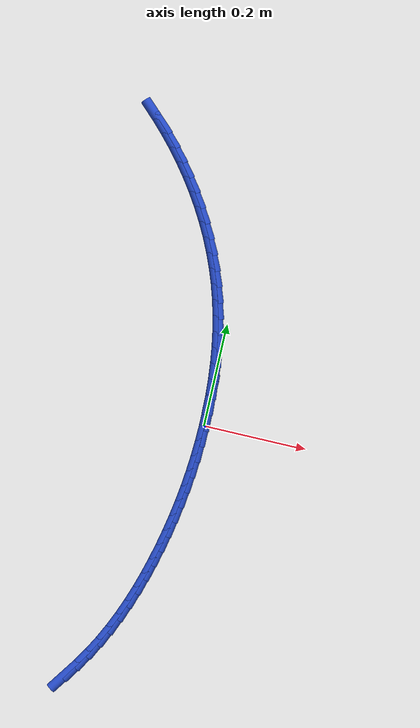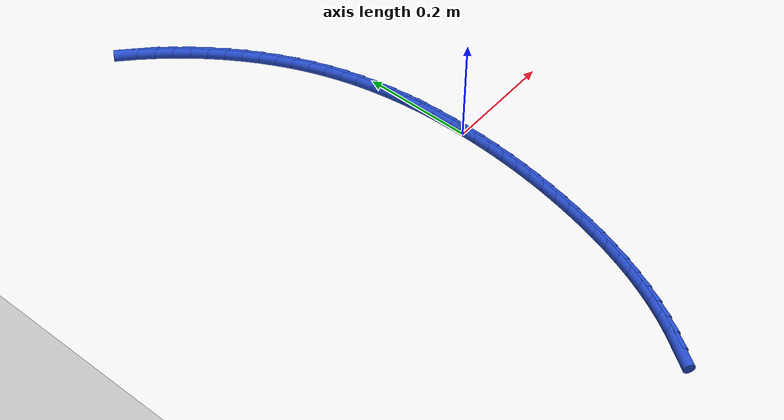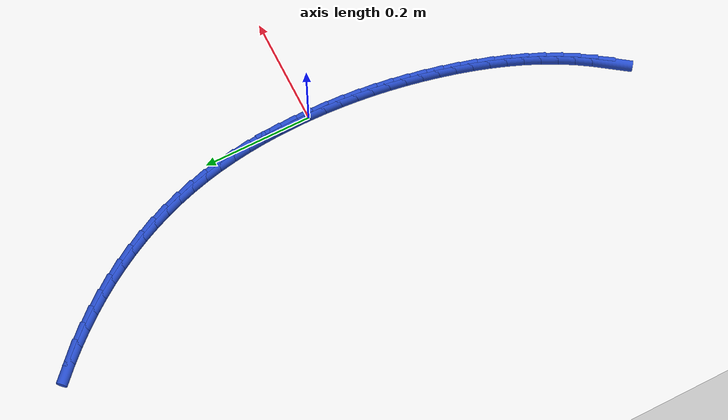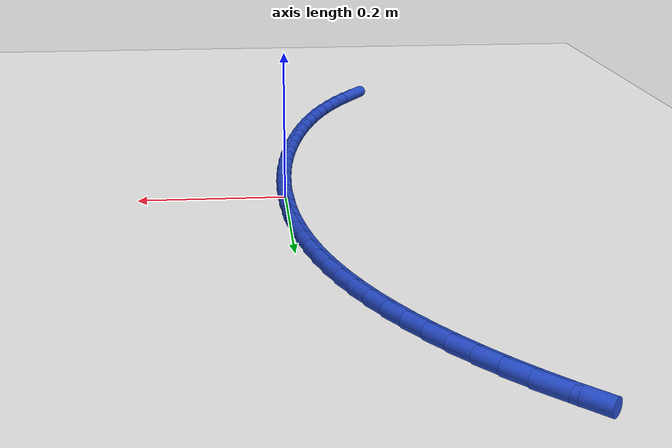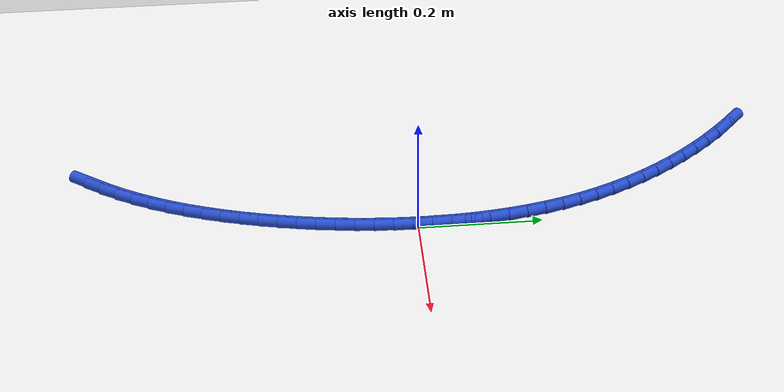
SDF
<sdf version="1.6">
 <world name="default">
  <model name="ground_plane">
   <static>1</static>
   <link name="link">
    <collision name="collision">
     <geometry><plane><normal>0 0 1</normal><size>100 100</size></plane></geometry>
     <surface><friction><ode><mu>100</mu><mu2>50</mu2></ode></friction></surface>
    </collision>
    <visual name="visual">
     <cast_shadows>0</cast_shadows>
     <geometry><plane><normal>0 0 1</normal><size>100 100</size></plane></geometry>
     <material>
      <script><uri>file://media/materials/scripts/gazebo.material</uri><name>Gazebo/WhiteGlow</name></script>
     </material>
    </visual>
   </link>
  </model>
  <model name="line">
   <link name="link_0">
    <pose>3.903127820947816e-18 0.0 0.01 0 1.57 -1.5688685416763228</pose>
    <collision name="collision">
     <geometry><cylinder><radius>0.01</radius><length>0.08</length></cylinder></geometry>
    </collision>
    <visual name="visual">
     <material>
      <script><name>Gazebo/Blue</name><uri>file://media/materials/scripts/gazebo.material</uri></script>
     </material>
     <geometry><cylinder><radius>0.01</radius><length>0.08</length></cylinder></geometry>
    </visual>
   </link>
   <link name="link_1">
    <pose>-5.944774072849972e-05 0.030837289131833163 0.01 0 1.57 -1.538648523186415</pose>
    <collision name="collision">
     <geometry><cylinder><radius>0.01</radius><length>0.08</length></cylinder></geometry>
    </collision>
    <visual name="visual">
     <material>
      <script><name>Gazebo/Blue</name><uri>file://media/materials/scripts/gazebo.material</uri></script>
     </material>
     <geometry><cylinder><radius>0.01</radius><length>0.08</length></cylinder></geometry>
    </visual>
   </link>
   <link name="link_2">
    <pose>-0.0010516052413795341 0.061689029335046615 0.01 0 1.57 -1.5064721320048367</pose>
    <collision name="collision">
     <geometry><cylinder><radius>0.01</radius><length>0.08</length></cylinder></geometry>
    </collision>
    <visual name="visual">
     <material>
      <script><name>Gazebo/Blue</name><uri>file://media/materials/scripts/gazebo.material</uri></script>
     </material>
     <geometry><cylinder><radius>0.01</radius><length>0.08</length></cylinder></geometry>
    </visual>
   </link>
   <link name="link_3">
    <pose>-0.0030357017874402554 0.09249173631178999 0.01 0 1.57 -1.472216735551028</pose>
    <collision name="collision">
     <geometry><cylinder><radius>0.01</radius><length>0.08</length></cylinder></geometry>
    </collision>
    <visual name="visual">
     <material>
      <script><name>Gazebo/Blue</name><uri>file://media/materials/scripts/gazebo.material</uri></script>
     </material>
     <geometry><cylinder><radius>0.01</radius><length>0.08</length></cylinder></geometry>
    </visual>
   </link>
   <link name="link_4">
    <pose>-0.006070966664397824 0.12318192576421297 0.01 0 1.57 -1.4357629286368352</pose>
    <collision name="collision">
     <geometry><cylinder><radius>0.01</radius><length>0.08</length></cylinder></geometry>
    </collision>
    <visual name="visual">
     <material>
      <script><name>Gazebo/Blue</name><uri>file://media/materials/scripts/gazebo.material</uri></script>
     </material>
     <geometry><cylinder><radius>0.01</radius><length>0.08</length></cylinder></geometry>
    </visual>
   </link>
   <link name="link_5">
    <pose>-0.010216629157739396 0.15369611339446512 0.01 0 1.57 -1.3969989315505809</pose>
    <collision name="collision">
     <geometry><cylinder><radius>0.01</radius><length>0.08</length></cylinder></geometry>
    </collision>
    <visual name="visual">
     <material>
      <script><name>Gazebo/Blue</name><uri>file://media/materials/scripts/gazebo.material</uri></script>
     </material>
     <geometry><cylinder><radius>0.01</radius><length>0.08</length></cylinder></geometry>
    </visual>
   </link>
   <link name="link_6">
    <pose>-0.015531918552952124 0.1839708149046961 0.01 0 1.57 -1.3558261853358378</pose>
    <collision name="collision">
     <geometry><cylinder><radius>0.01</radius><length>0.08</length></cylinder></geometry>
    </collision>
    <visual name="visual">
     <material>
      <script><name>Gazebo/Blue</name><uri>file://media/materials/scripts/gazebo.material</uri></script>
     </material>
     <geometry><cylinder><radius>0.01</radius><length>0.08</length></cylinder></geometry>
    </visual>
   </link>
   <link name="link_7">
    <pose>-0.022076064135523172 0.2139425459970556 0.01 0 1.57 -1.3121662163758536</pose>
    <collision name="collision">
     <geometry><cylinder><radius>0.01</radius><length>0.08</length></cylinder></geometry>
    </collision>
    <visual name="visual">
     <material>
      <script><name>Gazebo/Blue</name><uri>file://media/materials/scripts/gazebo.material</uri></script>
     </material>
     <geometry><cylinder><radius>0.01</radius><length>0.08</length></cylinder></geometry>
    </visual>
   </link>
   <link name="link_8">
    <pose>-0.02990829519093969 0.24354782237369313 0.01 0 1.57 -1.2662745034594183</pose>
    <collision name="collision">
     <geometry><cylinder><radius>0.01</radius><length>0.08</length></cylinder></geometry>
    </collision>
    <visual name="visual">
     <material>
      <script><name>Gazebo/Blue</name><uri>file://media/materials/scripts/gazebo.material</uri></script>
     </material>
     <geometry><cylinder><radius>0.01</radius><length>0.08</length></cylinder></geometry>
    </visual>
   </link>
   <link name="link_9">
    <pose>-0.039079155079875694 0.27272671507767576 0.01 0 1.57 -1.220235402214348</pose>
    <collision name="collision">
     <geometry><cylinder><radius>0.01</radius><length>0.08</length></cylinder></geometry>
    </collision>
    <visual name="visual">
     <material>
      <script><name>Gazebo/Blue</name><uri>file://media/materials/scripts/gazebo.material</uri></script>
     </material>
     <geometry><cylinder><radius>0.01</radius><length>0.08</length></cylinder></geometry>
    </visual>
   </link>
   <link name="link_10">
    <pose>-0.0495798832912456 0.30144356953693513 0.01 0 1.57 -1.1749538954135756</pose>
    <collision name="collision">
     <geometry><cylinder><radius>0.01</radius><length>0.08</length></cylinder></geometry>
    </collision>
    <visual name="visual">
     <material>
      <script><name>Gazebo/Blue</name><uri>file://media/materials/scripts/gazebo.material</uri></script>
     </material>
     <geometry><cylinder><radius>0.01</radius><length>0.08</length></cylinder></geometry>
    </visual>
   </link>
   <link name="link_11">
    <pose>-0.06137693907104492 0.3296728742802801 0.01 0 1.57 -1.130457455954913</pose>
    <collision name="collision">
     <geometry><cylinder><radius>0.01</radius><length>0.08</length></cylinder></geometry>
    </collision>
    <visual name="visual">
     <material>
      <script><name>Gazebo/Blue</name><uri>file://media/materials/scripts/gazebo.material</uri></script>
     </material>
     <geometry><cylinder><radius>0.01</radius><length>0.08</length></cylinder></geometry>
    </visual>
   </link>
   <link name="link_12">
    <pose>-0.07443669855390374 0.35738915185583764 0.01 0 1.57 -1.0867579508593552</pose>
    <collision name="collision">
     <geometry><cylinder><radius>0.01</radius><length>0.08</length></cylinder></geometry>
    </collision>
    <visual name="visual">
     <material>
      <script><name>Gazebo/Blue</name><uri>file://media/materials/scripts/gazebo.material</uri></script>
     </material>
     <geometry><cylinder><radius>0.01</radius><length>0.08</length></cylinder></geometry>
    </visual>
   </link>
   <link name="link_13">
    <pose>-0.08872553787445203 0.38456692481173443 0.01 0 1.57 -1.04385568588925</pose>
    <collision name="collision">
     <geometry><cylinder><radius>0.01</radius><length>0.08</length></cylinder></geometry>
    </collision>
    <visual name="visual">
     <material>
      <script><name>Gazebo/Blue</name><uri>file://media/materials/scripts/gazebo.material</uri></script>
     </material>
     <geometry><cylinder><radius>0.01</radius><length>0.08</length></cylinder></geometry>
    </visual>
   </link>
   <link name="link_14">
    <pose>-0.10420983316731983 0.4111807156960974 0.01 0 1.57 -1.0017406390713344</pose>
    <collision name="collision">
     <geometry><cylinder><radius>0.01</radius><length>0.08</length></cylinder></geometry>
    </collision>
    <visual name="visual">
     <material>
      <script><name>Gazebo/Blue</name><uri>file://media/materials/scripts/gazebo.material</uri></script>
     </material>
     <geometry><cylinder><radius>0.01</radius><length>0.08</length></cylinder></geometry>
    </visual>
   </link>
   <link name="link_15">
    <pose>-0.12085596056713714 0.43720504705705326 0.01 0 1.57 -0.9603937432757044</pose>
    <collision name="collision">
     <geometry><cylinder><radius>0.01</radius><length>0.08</length></cylinder></geometry>
    </collision>
    <visual name="visual">
     <material>
      <script><name>Gazebo/Blue</name><uri>file://media/materials/scripts/gazebo.material</uri></script>
     </material>
     <geometry><cylinder><radius>0.01</radius><length>0.08</length></cylinder></geometry>
    </visual>
   </link>
   <link name="link_16">
    <pose>-0.13863029620853415 0.4626144414427294 0.01 0 1.57 -0.9197881642914152</pose>
    <collision name="collision">
     <geometry><cylinder><radius>0.01</radius><length>0.08</length></cylinder></geometry>
    </collision>
    <visual name="visual">
     <material>
      <script><name>Gazebo/Blue</name><uri>file://media/materials/scripts/gazebo.material</uri></script>
     </material>
     <geometry><cylinder><radius>0.01</radius><length>0.08</length></cylinder></geometry>
    </visual>
   </link>
   <link name="link_17">
    <pose>-0.15749921622614063 0.4873834214012518 0.01 0 1.57 -0.8798905333932457</pose>
    <collision name="collision">
     <geometry><cylinder><radius>0.01</radius><length>0.08</length></cylinder></geometry>
    </collision>
    <visual name="visual">
     <material>
      <script><name>Gazebo/Blue</name><uri>file://media/materials/scripts/gazebo.material</uri></script>
     </material>
     <geometry><cylinder><radius>0.01</radius><length>0.08</length></cylinder></geometry>
    </visual>
   </link>
   <link name="link_18">
    <pose>-0.17742909675458682 0.511486509480748 0.01 0 1.57 -0.8406621053352632</pose>
    <collision name="collision">
     <geometry><cylinder><radius>0.01</radius><length>0.08</length></cylinder></geometry>
    </collision>
    <visual name="visual">
     <material>
      <script><name>Gazebo/Blue</name><uri>file://media/materials/scripts/gazebo.material</uri></script>
     </material>
     <geometry><cylinder><radius>0.01</radius><length>0.08</length></cylinder></geometry>
    </visual>
   </link>
   <link name="link_19">
    <pose>-0.19838631392850253 0.5348982282293444 0.01 0 1.57 -0.8020598233163297</pose>
    <collision name="collision">
     <geometry><cylinder><radius>0.01</radius><length>0.08</length></cylinder></geometry>
    </collision>
    <visual name="visual">
     <material>
      <script><name>Gazebo/Blue</name><uri>file://media/materials/scripts/gazebo.material</uri></script>
     </material>
     <geometry><cylinder><radius>0.01</radius><length>0.08</length></cylinder></geometry>
    </visual>
   </link>
   <link name="link_20">
    <pose>-0.22033724388251802 0.5575931001951681 0.01 0 1.57 -0.7640372813641009</pose>
    <collision name="collision">
     <geometry><cylinder><radius>0.01</radius><length>0.08</length></cylinder></geometry>
    </collision>
    <visual name="visual">
     <material>
      <script><name>Gazebo/Blue</name><uri>file://media/materials/scripts/gazebo.material</uri></script>
     </material>
     <geometry><cylinder><radius>0.01</radius><length>0.08</length></cylinder></geometry>
    </visual>
   </link>
   <link name="link_232">
    <pose>-0.15233219425259067 -0.5238453554534701 0.01 0 1.57 0.9579214624686431</pose>
    <collision name="collision">
     <geometry><cylinder><radius>0.01</radius><length>0.08</length></cylinder></geometry>
    </collision>
    <visual name="visual">
     <material>
      <script><name>Gazebo/Blue</name><uri>file://media/materials/scripts/gazebo.material</uri></script>
     </material>
     <geometry><cylinder><radius>0.01</radius><length>0.08</length></cylinder></geometry>
    </visual>
   </link>
   <link name="link_233">
    <pose>-0.1345565628349683 -0.4985673942444164 0.01 0 1.57 1.0063037882919927</pose>
    <collision name="collision">
     <geometry><cylinder><radius>0.01</radius><length>0.08</length></cylinder></geometry>
    </collision>
    <visual name="visual">
     <material>
      <script><name>Gazebo/Blue</name><uri>file://media/materials/scripts/gazebo.material</uri></script>
     </material>
     <geometry><cylinder><radius>0.01</radius><length>0.08</length></cylinder></geometry>
    </visual>
   </link>
   <link name="link_234">
    <pose>-0.11808312054652864 -0.4725522728833485 0.01 0 1.57 1.058001607424956</pose>
    <collision name="collision">
     <geometry><cylinder><radius>0.01</radius><length>0.08</length></cylinder></geometry>
    </collision>
    <visual name="visual">
     <material>
      <script><name>Gazebo/Blue</name><uri>file://media/materials/scripts/gazebo.material</uri></script>
     </material>
     <geometry><cylinder><radius>0.01</radius><length>0.08</length></cylinder></geometry>
    </visual>
   </link>
   <link name="link_235">
    <pose>-0.10300223034334775 -0.44576721066044633 0.01 0 1.57 1.1067398163437976</pose>
    <collision name="collision">
     <geometry><cylinder><radius>0.01</radius><length>0.08</length></cylinder></geometry>
    </collision>
    <visual name="visual">
     <material>
      <script><name>Gazebo/Blue</name><uri>file://media/materials/scripts/gazebo.material</uri></script>
     </material>
     <geometry><cylinder><radius>0.01</radius><length>0.08</length></cylinder></geometry>
    </visual>
   </link>
   <link name="link_236">
    <pose>-0.08924783877996775 -0.41828652550993667 0.01 0 1.57 1.1519578281014426</pose>
    <collision name="collision">
     <geometry><cylinder><radius>0.01</radius><length>0.08</length></cylinder></geometry>
    </collision>
    <visual name="visual">
     <material>
      <script><name>Gazebo/Blue</name><uri>file://media/materials/scripts/gazebo.material</uri></script>
     </material>
     <geometry><cylinder><radius>0.01</radius><length>0.08</length></cylinder></geometry>
    </visual>
   </link>
   <link name="link_237">
    <pose>-0.07674124594551723 -0.3901931944279122 0.01 0 1.57 1.1936588373112051</pose>
    <collision name="collision">
     <geometry><cylinder><radius>0.01</radius><length>0.08</length></cylinder></geometry>
    </collision>
    <visual name="visual">
     <material>
      <script><name>Gazebo/Blue</name><uri>file://media/materials/scripts/gazebo.material</uri></script>
     </material>
     <geometry><cylinder><radius>0.01</radius><length>0.08</length></cylinder></geometry>
    </visual>
   </link>
   <link name="link_238">
    <pose>-0.06540375192912488 -0.36157019441046584 0.01 0 1.57 1.231895196345337</pose>
    <collision name="collision">
     <geometry><cylinder><radius>0.01</radius><length>0.08</length></cylinder></geometry>
    </collision>
    <visual name="visual">
     <material>
      <script><name>Gazebo/Blue</name><uri>file://media/materials/scripts/gazebo.material</uri></script>
     </material>
     <geometry><cylinder><radius>0.01</radius><length>0.08</length></cylinder></geometry>
    </visual>
   </link>
   <link name="link_239">
    <pose>-0.055156656819919304 -0.3325005024536904 0.01 0 1.57 1.2667525148490748</pose>
    <collision name="collision">
     <geometry><cylinder><radius>0.01</radius><length>0.08</length></cylinder></geometry>
    </collision>
    <visual name="visual">
     <material>
      <script><name>Gazebo/Blue</name><uri>file://media/materials/scripts/gazebo.material</uri></script>
     </material>
     <geometry><cylinder><radius>0.01</radius><length>0.08</length></cylinder></geometry>
    </visual>
   </link>
   <link name="link_240">
    <pose>-0.04592126070702939 -0.30306709555367956 0.01 0 1.57 1.2983358189969814</pose>
    <collision name="collision">
     <geometry><cylinder><radius>0.01</radius><length>0.08</length></cylinder></geometry>
    </collision>
    <visual name="visual">
     <material>
      <script><name>Gazebo/Blue</name><uri>file://media/materials/scripts/gazebo.material</uri></script>
     </material>
     <geometry><cylinder><radius>0.01</radius><length>0.08</length></cylinder></geometry>
    </visual>
   </link>
   <link name="link_241">
    <pose>-0.03761886367958323 -0.2733529507065243 0.01 0 1.57 1.326761058267998</pose>
    <collision name="collision">
     <geometry><cylinder><radius>0.01</radius><length>0.08</length></cylinder></geometry>
    </collision>
    <visual name="visual">
     <material>
      <script><name>Gazebo/Blue</name><uri>file://media/materials/scripts/gazebo.material</uri></script>
     </material>
     <geometry><cylinder><radius>0.01</radius><length>0.08</length></cylinder></geometry>
    </visual>
   </link>
   <link name="link_242">
    <pose>-0.030170845477655278 -0.24344097626243033 0.01 0 1.57 1.3530371601236157</pose>
    <collision name="collision">
     <geometry><cylinder><radius>0.01</radius><length>0.08</length></cylinder></geometry>
    </collision>
    <visual name="visual">
     <material>
      <script><name>Gazebo/Blue</name><uri>file://media/materials/scripts/gazebo.material</uri></script>
     </material>
     <geometry><cylinder><radius>0.01</radius><length>0.08</length></cylinder></geometry>
    </visual>
   </link>
   <link name="link_243">
    <pose>-0.0235223343354874 -0.21339361331332415 0.01 0 1.57 1.3793619306554639</pose>
    <collision name="collision">
     <geometry><cylinder><radius>0.01</radius><length>0.08</length></cylinder></geometry>
    </collision>
    <visual name="visual">
     <material>
      <script><name>Gazebo/Blue</name><uri>file://media/materials/scripts/gazebo.material</uri></script>
     </material>
     <geometry><cylinder><radius>0.01</radius><length>0.08</length></cylinder></geometry>
    </visual>
   </link>
   <link name="link_244">
    <pose>-0.01767529318652976 -0.18322432087843113 0.01 0 1.57 1.4060398066805637</pose>
    <collision name="collision">
     <geometry><cylinder><radius>0.01</radius><length>0.08</length></cylinder></geometry>
    </collision>
    <visual name="visual">
     <material>
      <script><name>Gazebo/Blue</name><uri>file://media/materials/scripts/gazebo.material</uri></script>
     </material>
     <geometry><cylinder><radius>0.01</radius><length>0.08</length></cylinder></geometry>
    </visual>
   </link>
   <link name="link_245">
    <pose>-0.012640009242385938 -0.15293938383154507 0.01 0 1.57 1.4330546905333585</pose>
    <collision name="collision">
     <geometry><cylinder><radius>0.01</radius><length>0.08</length></cylinder></geometry>
    </collision>
    <visual name="visual">
     <material>
      <script><name>Gazebo/Blue</name><uri>file://media/materials/scripts/gazebo.material</uri></script>
     </material>
     <geometry><cylinder><radius>0.01</radius><length>0.08</length></cylinder></geometry>
    </visual>
   </link>
   <link name="link_246">
    <pose>-0.00842676971465954 -0.12254508704645975 0.01 0 1.57 1.460388156347689</pose>
    <collision name="collision">
     <geometry><cylinder><radius>0.01</radius><length>0.08</length></cylinder></geometry>
    </collision>
    <visual name="visual">
     <material>
      <script><name>Gazebo/Blue</name><uri>file://media/materials/scripts/gazebo.material</uri></script>
     </material>
     <geometry><cylinder><radius>0.01</radius><length>0.08</length></cylinder></geometry>
    </visual>
   </link>
   <link name="link_247">
    <pose>-0.005045861814954158 -0.09204771539696885 0.01 0 1.57 1.4880194565223601</pose>
    <collision name="collision">
     <geometry><cylinder><radius>0.01</radius><length>0.08</length></cylinder></geometry>
    </collision>
    <visual name="visual">
     <material>
      <script><name>Gazebo/Blue</name><uri>file://media/materials/scripts/gazebo.material</uri></script>
     </material>
     <geometry><cylinder><radius>0.01</radius><length>0.08</length></cylinder></geometry>
    </visual>
   </link>
   <link name="link_248">
    <pose>-0.002507572754873378 -0.061453553756866085 0.01 0 1.57 1.5159255592040646</pose>
    <collision name="collision">
     <geometry><cylinder><radius>0.01</radius><length>0.08</length></cylinder></geometry>
    </collision>
    <visual name="visual">
     <material>
      <script><name>Gazebo/Blue</name><uri>file://media/materials/scripts/gazebo.material</uri></script>
     </material>
     <geometry><cylinder><radius>0.01</radius><length>0.08</length></cylinder></geometry>
    </visual>
   </link>
   <link name="link_249">
    <pose>-0.0008221897460207943 -0.03076888699994519 0.01 0 1.57 1.5440812188159088</pose>
    <collision name="collision">
     <geometry><cylinder><radius>0.01</radius><length>0.08</length></cylinder></geometry>
    </collision>
    <visual name="visual">
     <material>
      <script><name>Gazebo/Blue</name><uri>file://media/materials/scripts/gazebo.material</uri></script>
     </material>
     <geometry><cylinder><radius>0.01</radius><length>0.08</length></cylinder></geometry>
    </visual>
   </link>
   <link name="link_250">
    <pose>5.637851296924623e-18 9.020562075079397e-17 0.01 0 1.57 -1.5691335726696252</pose>
    <collision name="collision">
     <geometry><cylinder><radius>0.01</radius><length>0.08</length></cylinder></geometry>
    </collision>
    <visual name="visual">
     <material>
      <script><name>Gazebo/Blue</name><uri>file://media/materials/scripts/gazebo.material</uri></script>
     </material>
     <geometry><cylinder><radius>0.01</radius><length>0.08</length></cylinder></geometry>
    </visual>
   </link>
   <link name="link_251">
    <pose>-5.129072841457156e-05 0.030846822369176057 0.01 0 1.57 -1.5405628317566191</pose>
    <collision name="collision">
     <geometry><cylinder><radius>0.01</radius><length>0.08</length></cylinder></geometry>
    </collision>
    <visual name="visual">
     <material>
      <script><name>Gazebo/Blue</name><uri>file://media/materials/scripts/gazebo.material</uri></script>
     </material>
     <geometry><cylinder><radius>0.01</radius><length>0.08</length></cylinder></geometry>
    </visual>
   </link>
   <link name="link_252">
    <pose>-0.0009863491428681176 0.06176529523378897 0.01 0 1.57 -1.5548283741431026</pose>
    <collision name="collision">
     <geometry><cylinder><radius>0.01</radius><length>0.08</length></cylinder></geometry>
    </collision>
    <visual name="visual">
     <material>
      <script><name>Gazebo/Blue</name><uri>file://media/materials/scripts/gazebo.material</uri></script>
     </material>
     <geometry><cylinder><radius>0.01</radius><length>0.08</length></cylinder></geometry>
    </visual>
   </link>
  </model>
 </world>
</sdf>
